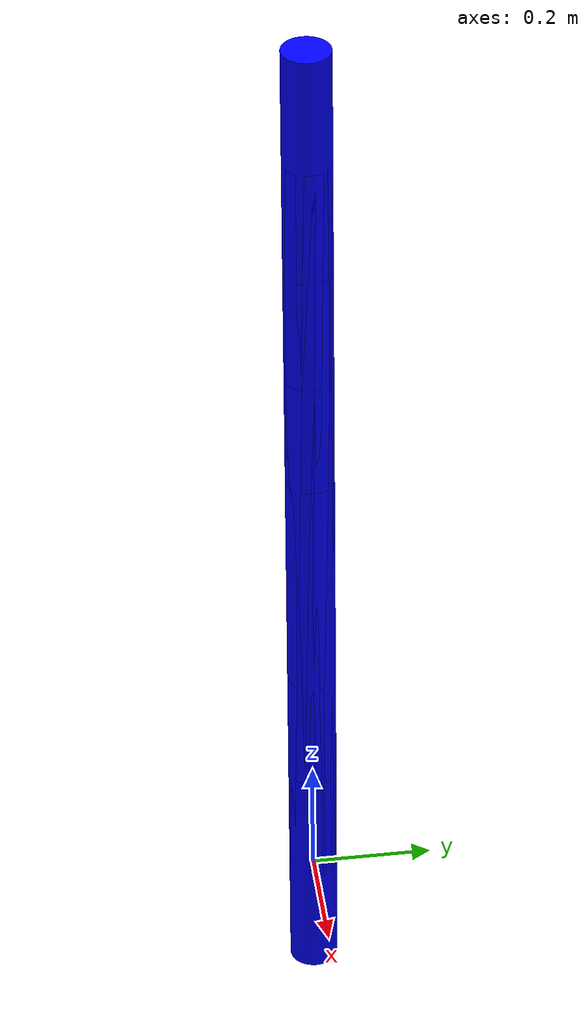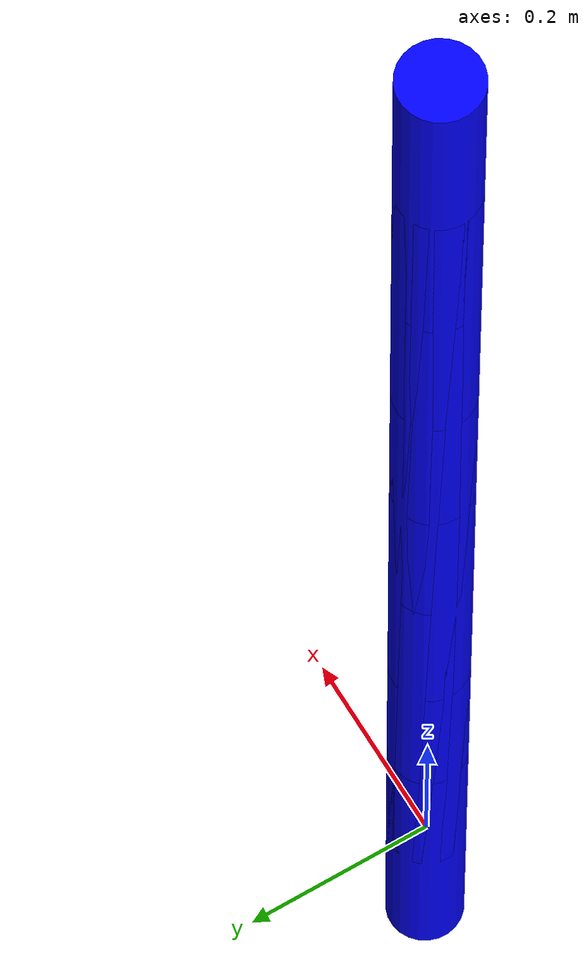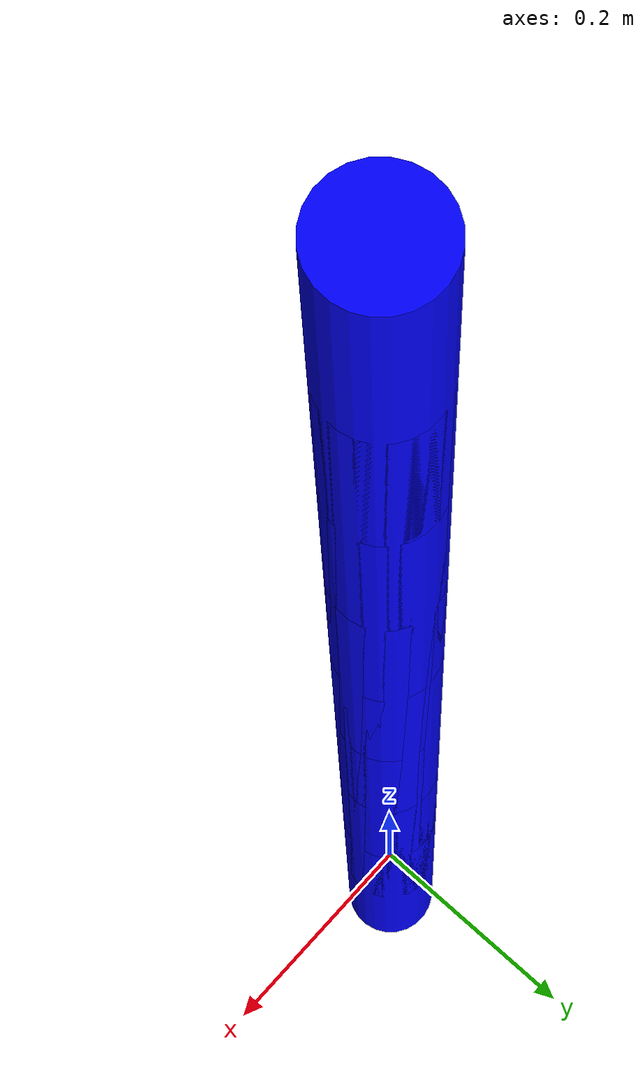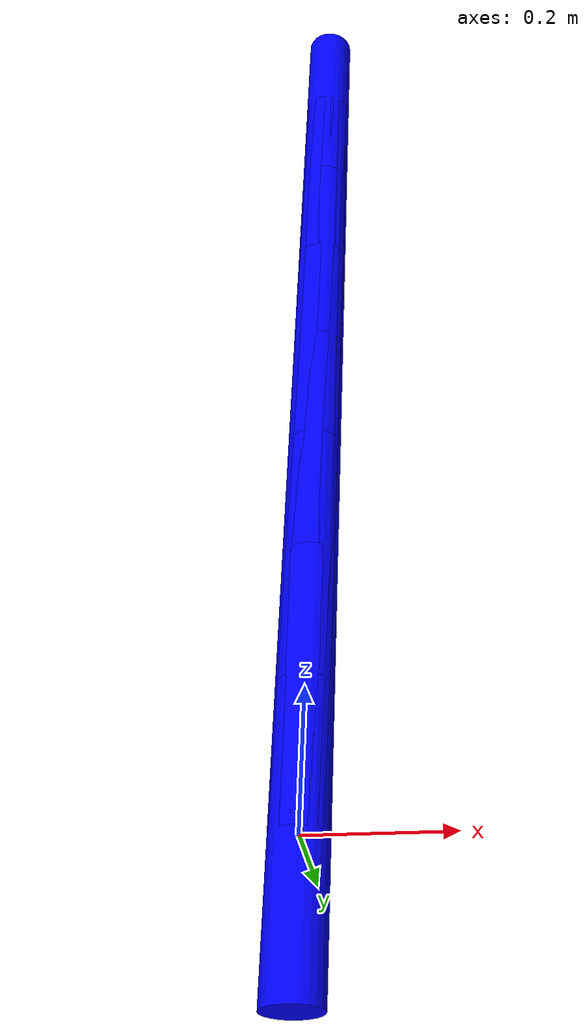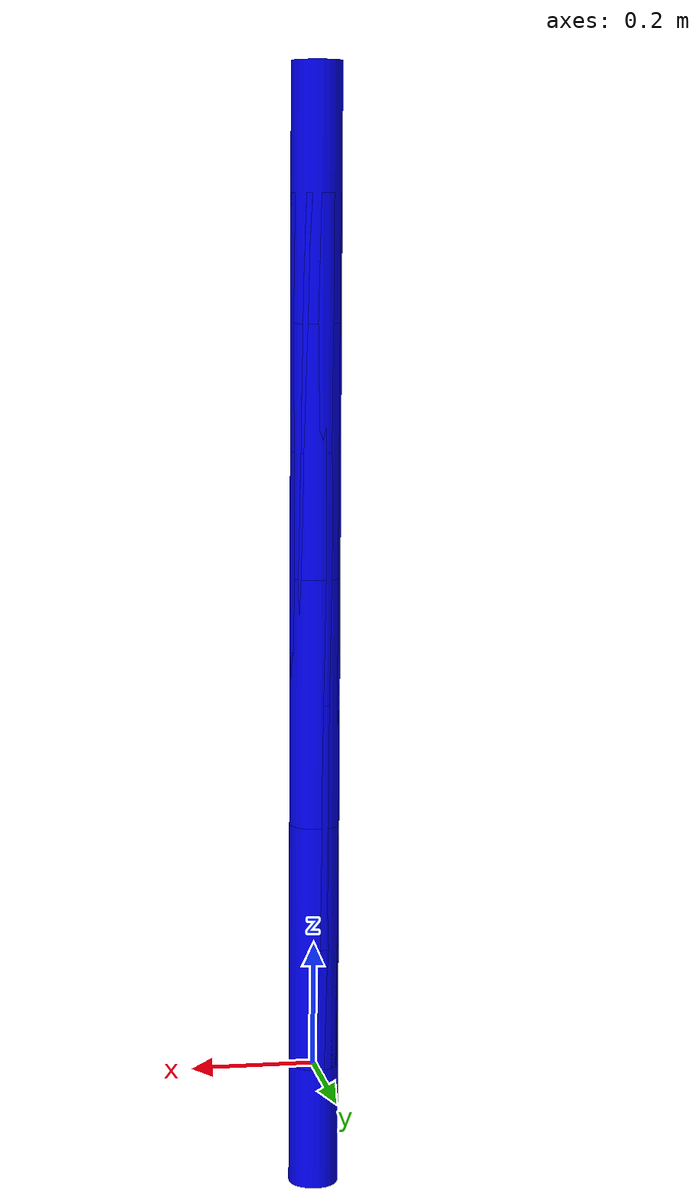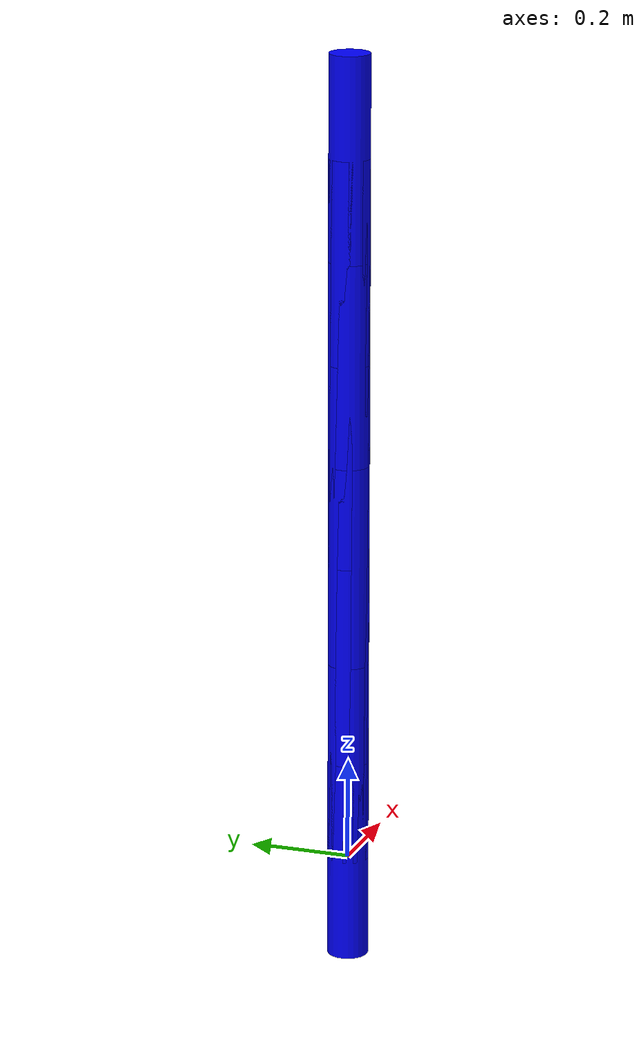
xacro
<?xml version="1.0"?>

<robot name="robot_kuka" xmlns:xacro="http://wiki.ros.org/xacro">
    <xacro:include filename="$(find esercizio5)/urdf/robot_kuka_macro.xacro" />

<xacro:kuka_link
			name="link1">
			<geometry>
				<cylinder length="0.4" radius="0.04"/>
			</geometry>

			<origin xyz="0 0 0" rpy="0 0 0.09"/>

		</xacro:kuka_link>

<xacro:kuka_joint
			name="joint1"
			type="revolute"
			parent="link1"
			child="link2">
			<origin xyz="0 0 0.2" />
			<axis xyz="0 1 0"/>
		</xacro:kuka_joint>

<xacro:kuka_link
			name="link2">
			<geometry>
				<cylinder length="0.4" radius="0.04"/>
			</geometry>

			<origin xyz="0 0 0" rpy="0 0 0.09"/>

		</xacro:kuka_link>

<xacro:kuka_joint
			name="joint2"
			type="revolute"
			parent="link2"
			child="link3">
			<origin xyz="0 0 0.2" />
			<axis xyz="0 1 0"/>
		</xacro:kuka_joint>

<xacro:kuka_link
			name="link3">
			<geometry>
				<cylinder length="0.4" radius="0.04"/>
			</geometry>

			<origin xyz="0 0 0" rpy="0 0 0.09"/>

		</xacro:kuka_link>

<xacro:kuka_joint
			name="joint3"
			type="revolute"
			parent="link3"
			child="link4">
			<origin xyz="0 0 0.2" />
			<axis xyz="0 1 0"/>
		</xacro:kuka_joint>

<xacro:kuka_link
			name="link4">
			<geometry>
				<cylinder length="0.4" radius="0.04"/>
			</geometry>

			<origin xyz="0 0 0" rpy="0 0 0.09"/>

		</xacro:kuka_link>

<xacro:kuka_joint
			name="joint4"
			type="revolute"
			parent="link4"
			child="link5">
			<origin xyz="0 0 0.2" />
			<axis xyz="0 1 0"/>
		</xacro:kuka_joint>

<xacro:kuka_link
			name="link5">
			<geometry>
				<cylinder length="0.4" radius="0.04"/>
			</geometry>

			<origin xyz="0 0 0" rpy="0 0 0.09"/>

		</xacro:kuka_link>

<xacro:kuka_joint
			name="joint5"
			type="revolute"
			parent="link5"
			child="link6">
			<origin xyz="0 0 0.2" />
			<axis xyz="0 1 0"/>
		</xacro:kuka_joint>

<xacro:kuka_link
			name="link6">
			<geometry>
				<cylinder length="0.4" radius="0.04"/>
			</geometry>

			<origin xyz="0 0 0" rpy="0 0 0.09"/>

		</xacro:kuka_link>

<xacro:kuka_joint
			name="joint6"
			type="revolute"
			parent="link6"
			child="link7">
			<origin xyz="0 0 0.2" />
			<axis xyz="0 1 0"/>
		</xacro:kuka_joint>

<xacro:kuka_link
			name="link7">
			<geometry>
				<cylinder length="0.4" radius="0.04"/>
			</geometry>

			<origin xyz="0 0 0" rpy="0 0 0.09"/>

		</xacro:kuka_link>

<xacro:kuka_joint
			name="joint7"
			type="revolute"
			parent="link7"
			child="end_effector">
			<origin xyz="0 0 0.2" />
			<axis xyz="0 1 0"/>
		</xacro:kuka_joint>

<xacro:kuka_link
			name="end_effector">
			<geometry>
				<cylinder length="0.4" radius="0.04"/>
			</geometry>

			<origin xyz="0 0 0" rpy="0 0 0.09"/>

		</xacro:kuka_link>

</robot>

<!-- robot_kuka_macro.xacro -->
<robot name="robot_kuka_macro" xmlns:xacro="http://wiki.ros.org/xacro">

	<xacro:macro name="kuka_link" params="name *geometry *origin">
		<link name="${name}">
			<visual>
				<xacro:insert_block name="geometry" />
				<xacro:insert_block name="origin" />
		    <material name="red">
		      <color rgba="0 0 1 1"/>
		    </material>
		  </visual>

		  <collision>
				<xacro:insert_block name="geometry" />
				<xacro:insert_block name="origin" />
			</collision>

			<inertial>
				<mass value="1"/>
					<inertia ixx="1.0" ixy="0.0" ixz="0.0" iyy="1.0" iyz="0.0" izz="1.0"/>
		  </inertial>
	  </link>
	</xacro:macro>

	<xacro:macro name="kuka_joint" params="name type parent child *origin *axis">
		<joint name="${name}" type="${type}">
			<parent link="${parent}" />
			<child link="${child}" />
	   			<xacro:insert_block name="origin" />
				<xacro:insert_block name="axis" />
	    <limit effort="300" velocity="0.1" lower="-3.14" upper="3.14"/>
	    <dynamics damping="50" friction="1"/>
		</joint>
	</xacro:macro>

</robot>
